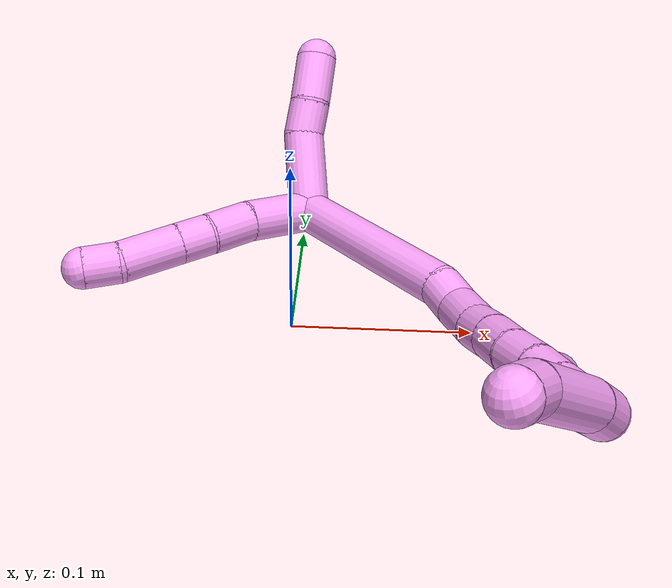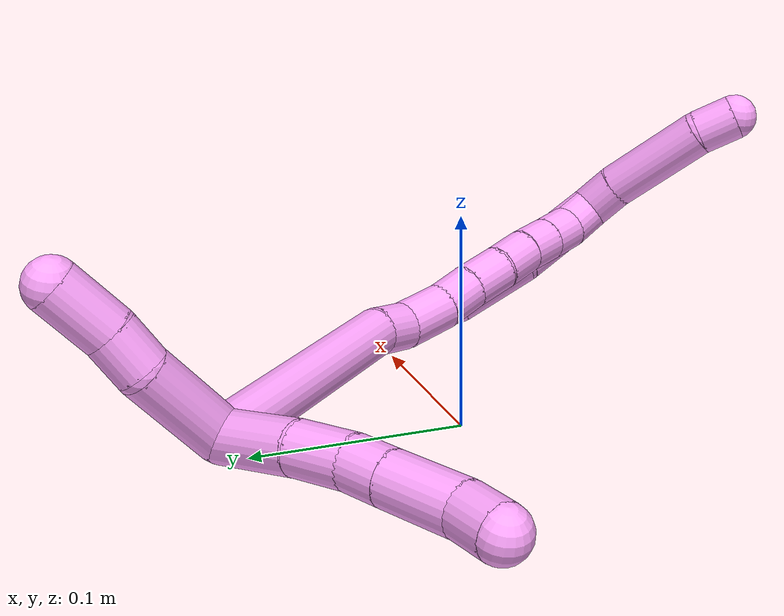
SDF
<sdf version="1.7">
 <world name="default">
  <model name="photoneo_s_sensor">
   <static>1</static>
   <pose>0 0 2 1.57079 1.57079 3.14159</pose>
   <link name="link">
    <inertial><mass>0.1</mass></inertial>
    <sensor name="sensor" type="depth">
     <update_rate>30</update_rate>
     <camera>
      <horizontal_fov>1.22</horizontal_fov>
      <image><width>1920</width><height>1200</height><format>B8G8R8</format></image>
      <clip><near>0.1</near><far>4</far></clip>
      <depth_camera><output>points</output></depth_camera>
     </camera>
     <plugin name="camera_plugin" filename="libgazebo_ros_depth_camera.so">
      <baseline>0.2</baseline>
      <alwaysOn>1</alwaysOn>
      <updateRate>0.0</updateRate>
      <cameraName>camera_ir</cameraName>
      <imageTopicName>/camera/color/image_raw</imageTopicName>
      <cameraInfoTopicName>/camera/color/camera_info</cameraInfoTopicName>
      <depthImageTopicName>/camera/depth/image_raw</depthImageTopicName>
      <depthImageCameraInfoTopicName>/camera/depth/camera_info</depthImageCameraInfoTopicName>
      <pointCloudTopicName>/camera/depth/points</pointCloudTopicName>
      <frameName>fr_optical</frameName>
      <pointCloudCutoff>0.1</pointCloudCutoff>
      <pointCloudCutoffMax>2.0</pointCloudCutoffMax>
      <distortionK1>0</distortionK1>
      <distortionK2>0</distortionK2>
      <distortionK3>0</distortionK3>
      <distortionT1>0</distortionT1>
      <distortionT2>0</distortionT2>
      <CxPrime>0</CxPrime>
      <Cx>0</Cx>
      <Cy>0</Cy>
      <focalLength>0</focalLength>
      <hackBaseline>0</hackBaseline>
     </plugin>
    </sensor>
   </link>
  </model>
  <model name="bin">
   <static>1</static>
   <link name="bottom">
    <collision name="collision-bottom">
     <pose>0 0 -0.01 0 -0 0</pose>
     <geometry><box><size>0.8 0.6 0.02</size></box></geometry>
     <surface>
      <friction><ode><mu>100</mu><mu2>100</mu2></ode></friction>
      <contact><collide_bitmask>65535</collide_bitmask></contact>
     </surface>
    </collision>
   </link>
   <link name="west_wall">
    <collision name="collision-west_wall">
     <pose>-0.41 0 0.1 0 -0 0</pose>
     <geometry><box><size>0.02 0.6 0.2</size></box></geometry>
     <surface>
      <friction><ode><mu>100</mu><mu2>100</mu2></ode></friction>
      <contact><collide_bitmask>65535</collide_bitmask></contact>
     </surface>
    </collision>
   </link>
   <link name="east_wall">
    <collision name="collision-east_wall">
     <pose>0.41 0 0.1 0 -0 0</pose>
     <geometry><box><size>0.02 0.6 0.2</size></box></geometry>
     <surface>
      <friction><ode><mu>100</mu><mu2>100</mu2></ode></friction>
      <contact><collide_bitmask>65535</collide_bitmask></contact>
     </surface>
    </collision>
   </link>
   <link name="south_wall">
    <collision name="collision-south_wall">
     <pose>0 -0.31 0.1 0 -0 0</pose>
     <geometry><box><size>0.8 0.02 0.2</size></box></geometry>
     <surface>
      <friction><ode><mu>100</mu><mu2>100</mu2></ode></friction>
      <contact><collide_bitmask>65535</collide_bitmask></contact>
     </surface>
    </collision>
   </link>
   <link name="north_wall">
    <collision name="collision-north_wall">
     <pose>0 0.31 0.1 0 -0 0</pose>
     <geometry><box><size>0.8 0.02 0.2</size></box></geometry>
     <surface>
      <friction><ode><mu>100</mu><mu2>100</mu2></ode></friction>
      <contact><collide_bitmask>65535</collide_bitmask></contact>
     </surface>
    </collision>
   </link>
  </model>
  <model name="4">
   <static>0</static>
   <link name="4">
    <collision name="collision-cylinder-e_1_2_8">
     <pose>0.016734 0.011284 -0.00841 -2.21129 0.871519 -1.49586</pose>
     <geometry><cylinder><radius>0.0125</radius><length>0.043731</length></cylinder></geometry>
     <surface>
      <friction><ode><mu>1.16</mu><mu2>1.16</mu2><slip1>0</slip1><slip2>0</slip2></ode></friction>
      <contact><ode><kp>1e+06</kp><kd>1</kd><max_vel>0</max_vel><min_depth>0.001</min_depth></ode></contact>
     </surface>
    </collision>
    <visual name="visual-cylinder-e_1_2_8">
     <pose>0.016734 0.011284 -0.00841 -2.21129 0.871519 -1.49586</pose>
     <geometry><cylinder><radius>0.0125</radius><length>0.043731</length></cylinder></geometry>
     <material><ambient>1 0.65098 0.996078 1</ambient></material>
    </visual>
    <collision name="collision-cylinder-e_2_8_9">
     <pose>0.044851 0.029439 -0.020491 -2.06142 0.970715 -1.443</pose>
     <geometry><cylinder><radius>0.0125</radius><length>0.027586</length></cylinder></geometry>
     <surface>
      <friction><ode><mu>1.16</mu><mu2>1.16</mu2><slip1>0</slip1><slip2>0</slip2></ode></friction>
      <contact><ode><kp>1e+06</kp><kd>1</kd><max_vel>0</max_vel><min_depth>0.001</min_depth></ode></contact>
     </surface>
    </collision>
    <visual name="visual-cylinder-e_2_8_9">
     <pose>0.044851 0.029439 -0.020491 -2.06142 0.970715 -1.443</pose>
     <geometry><cylinder><radius>0.0125</radius><length>0.027586</length></cylinder></geometry>
     <material><ambient>1 0.65098 0.996078 1</ambient></material>
    </visual>
    <collision name="collision-cylinder-e_3_9_10">
     <pose>0.063803 0.042496 -0.026328 -1.90768 0.857079 -1.14439</pose>
     <geometry><cylinder><radius>0.0125</radius><length>0.020024</length></cylinder></geometry>
     <surface>
      <friction><ode><mu>1.16</mu><mu2>1.16</mu2><slip1>0</slip1><slip2>0</slip2></ode></friction>
      <contact><ode><kp>1e+06</kp><kd>1</kd><max_vel>0</max_vel><min_depth>0.001</min_depth></ode></contact>
     </surface>
    </collision>
    <visual name="visual-cylinder-e_3_9_10">
     <pose>0.063803 0.042496 -0.026328 -1.90768 0.857079 -1.14439</pose>
     <geometry><cylinder><radius>0.0125</radius><length>0.020024</length></cylinder></geometry>
     <material><ambient>1 0.65098 0.996078 1</ambient></material>
    </visual>
    <collision name="collision-cylinder-e_4_10_11">
     <pose>0.085513 0.059937 -0.032542 -1.91604 0.868739 -1.16655</pose>
     <geometry><cylinder><radius>0.0125</radius><length>0.037045</length></cylinder></geometry>
     <surface>
      <friction><ode><mu>1.16</mu><mu2>1.16</mu2><slip1>0</slip1><slip2>0</slip2></ode></friction>
      <contact><ode><kp>1e+06</kp><kd>1</kd><max_vel>0</max_vel><min_depth>0.001</min_depth></ode></contact>
     </surface>
    </collision>
    <visual name="visual-cylinder-e_4_10_11">
     <pose>0.085513 0.059937 -0.032542 -1.91604 0.868739 -1.16655</pose>
     <geometry><cylinder><radius>0.0125</radius><length>0.037045</length></cylinder></geometry>
     <material><ambient>1 0.65098 0.996078 1</ambient></material>
    </visual>
    <collision name="collision-cylinder-e_5_11_6">
     <pose>0.105911 0.079558 -0.039362 -1.89077 0.617332 -0.831629</pose>
     <geometry><cylinder><radius>0.0125</radius><length>0.021614</length></cylinder></geometry>
     <surface>
      <friction><ode><mu>1.16</mu><mu2>1.16</mu2><slip1>0</slip1><slip2>0</slip2></ode></friction>
      <contact><ode><kp>1e+06</kp><kd>1</kd><max_vel>0</max_vel><min_depth>0.001</min_depth></ode></contact>
     </surface>
    </collision>
    <visual name="visual-cylinder-e_5_11_6">
     <pose>0.105911 0.079558 -0.039362 -1.89077 0.617332 -0.831629</pose>
     <geometry><cylinder><radius>0.0125</radius><length>0.021614</length></cylinder></geometry>
     <material><ambient>1 0.65098 0.996078 1</ambient></material>
    </visual>
    <collision name="collision-cylinder-e_1_2_12">
     <pose>-0.016923 0.003362 -0.01752 -2.95201 -0.759032 2.67358</pose>
     <geometry><cylinder><radius>0.0125</radius><length>0.049179</length></cylinder></geometry>
     <surface>
      <friction><ode><mu>1.16</mu><mu2>1.16</mu2><slip1>0</slip1><slip2>0</slip2></ode></friction>
      <contact><ode><kp>1e+06</kp><kd>1</kd><max_vel>0</max_vel><min_depth>0.001</min_depth></ode></contact>
     </surface>
    </collision>
    <visual name="visual-cylinder-e_1_2_12">
     <pose>-0.016923 0.003362 -0.01752 -2.95201 -0.759032 2.67358</pose>
     <geometry><cylinder><radius>0.0125</radius><length>0.049179</length></cylinder></geometry>
     <material><ambient>1 0.65098 0.996078 1</ambient></material>
    </visual>
    <collision name="collision-cylinder-e_2_12_13">
     <pose>-0.041206 0.005208 -0.04233 2.9366 -0.779663 -2.65097</pose>
     <geometry><cylinder><radius>0.0125</radius><length>0.020938</length></cylinder></geometry>
     <surface>
      <friction><ode><mu>1.16</mu><mu2>1.16</mu2><slip1>0</slip1><slip2>0</slip2></ode></friction>
      <contact><ode><kp>1e+06</kp><kd>1</kd><max_vel>0</max_vel><min_depth>0.001</min_depth></ode></contact>
     </surface>
    </collision>
    <visual name="visual-cylinder-e_2_12_13">
     <pose>-0.041206 0.005208 -0.04233 2.9366 -0.779663 -2.65097</pose>
     <geometry><cylinder><radius>0.0125</radius><length>0.020938</length></cylinder></geometry>
     <material><ambient>1 0.65098 0.996078 1</ambient></material>
    </visual>
    <collision name="collision-cylinder-e_3_13_5">
     <pose>-0.060245 0.003216 -0.058926 3.09038 -0.897301 -3.03529</pose>
     <geometry><cylinder><radius>0.0125</radius><length>0.029883</length></cylinder></geometry>
     <surface>
      <friction><ode><mu>1.16</mu><mu2>1.16</mu2><slip1>0</slip1><slip2>0</slip2></ode></friction>
      <contact><ode><kp>1e+06</kp><kd>1</kd><max_vel>0</max_vel><min_depth>0.001</min_depth></ode></contact>
     </surface>
    </collision>
    <visual name="visual-cylinder-e_3_13_5">
     <pose>-0.060245 0.003216 -0.058926 3.09038 -0.897301 -3.03529</pose>
     <geometry><cylinder><radius>0.0125</radius><length>0.029883</length></cylinder></geometry>
     <material><ambient>1 0.65098 0.996078 1</ambient></material>
    </visual>
    <collision name="collision-cylinder-e_1_2_14">
     <pose>0.031924 -0.053979 0.00402 1.49645 0.532869 0.496262</pose>
     <geometry><cylinder><radius>0.0125</radius><length>0.125683</length></cylinder></geometry>
     <surface>
      <friction><ode><mu>1.16</mu><mu2>1.16</mu2><slip1>0</slip1><slip2>0</slip2></ode></friction>
      <contact><ode><kp>1e+06</kp><kd>1</kd><max_vel>0</max_vel><min_depth>0.001</min_depth></ode></contact>
     </surface>
    </collision>
    <visual name="visual-cylinder-e_1_2_14">
     <pose>0.031924 -0.053979 0.00402 1.49645 0.532869 0.496262</pose>
     <geometry><cylinder><radius>0.0125</radius><length>0.125683</length></cylinder></geometry>
     <material><ambient>1 0.65098 0.996078 1</ambient></material>
    </visual>
    <collision name="collision-cylinder-e_2_14_15">
     <pose>0.070886 -0.115147 0.009967 1.30894 0.757512 0.592724</pose>
     <geometry><cylinder><radius>0.0125</radius><length>0.020487</length></cylinder></geometry>
     <surface>
      <friction><ode><mu>1.16</mu><mu2>1.16</mu2><slip1>0</slip1><slip2>0</slip2></ode></friction>
      <contact><ode><kp>1e+06</kp><kd>1</kd><max_vel>0</max_vel><min_depth>0.001</min_depth></ode></contact>
     </surface>
    </collision>
    <visual name="visual-cylinder-e_2_14_15">
     <pose>0.070886 -0.115147 0.009967 1.30894 0.757512 0.592724</pose>
     <geometry><cylinder><radius>0.0125</radius><length>0.020487</length></cylinder></geometry>
     <material><ambient>1 0.65098 0.996078 1</ambient></material>
    </visual>
    <collision name="collision-cylinder-e_3_15_16">
     <pose>0.087928 -0.131291 0.009905 1.78936 0.828641 1.00288</pose>
     <geometry><cylinder><radius>0.0125</radius><length>0.027146</length></cylinder></geometry>
     <surface>
      <friction><ode><mu>1.16</mu><mu2>1.16</mu2><slip1>0</slip1><slip2>0</slip2></ode></friction>
      <contact><ode><kp>1e+06</kp><kd>1</kd><max_vel>0</max_vel><min_depth>0.001</min_depth></ode></contact>
     </surface>
    </collision>
    <visual name="visual-cylinder-e_3_15_16">
     <pose>0.087928 -0.131291 0.009905 1.78936 0.828641 1.00288</pose>
     <geometry><cylinder><radius>0.0125</radius><length>0.027146</length></cylinder></geometry>
     <material><ambient>1 0.65098 0.996078 1</ambient></material>
    </visual>
    <collision name="collision-cylinder-e_4_16_17">
     <pose>0.104892 -0.147552 0.005297 1.91505 0.731104 0.996208</pose>
     <geometry><cylinder><radius>0.0125</radius><length>0.020849</length></cylinder></geometry>
     <surface>
      <friction><ode><mu>1.16</mu><mu2>1.16</mu2><slip1>0</slip1><slip2>0</slip2></ode></friction>
      <contact><ode><kp>1e+06</kp><kd>1</kd><max_vel>0</max_vel><min_depth>0.001</min_depth></ode></contact>
     </surface>
    </collision>
    <visual name="visual-cylinder-e_4_16_17">
     <pose>0.104892 -0.147552 0.005297 1.91505 0.731104 0.996208</pose>
     <geometry><cylinder><radius>0.0125</radius><length>0.020849</length></cylinder></geometry>
     <material><ambient>1 0.65098 0.996078 1</ambient></material>
    </visual>
    <collision name="collision-cylinder-e_5_17_18">
     <pose>0.120131 -0.162906 0.000144 1.87576 0.775799 1.01639</pose>
     <geometry><cylinder><radius>0.0125</radius><length>0.023643</length></cylinder></geometry>
     <surface>
      <friction><ode><mu>1.16</mu><mu2>1.16</mu2><slip1>0</slip1><slip2>0</slip2></ode></friction>
      <contact><ode><kp>1e+06</kp><kd>1</kd><max_vel>0</max_vel><min_depth>0.001</min_depth></ode></contact>
     </surface>
    </collision>
    <visual name="visual-cylinder-e_5_17_18">
     <pose>0.120131 -0.162906 0.000144 1.87576 0.775799 1.01639</pose>
     <geometry><cylinder><radius>0.0125</radius><length>0.023643</length></cylinder></geometry>
     <material><ambient>1 0.65098 0.996078 1</ambient></material>
    </visual>
    <collision name="collision-cylinder-e_6_18_19">
     <pose>0.13548 -0.179265 -0.003949 1.75621 0.696515 0.824793</pose>
     <geometry><cylinder><radius>0.0125</radius><length>0.022043</length></cylinder></geometry>
     <surface>
      <friction><ode><mu>1.16</mu><mu2>1.16</mu2><slip1>0</slip1><slip2>0</slip2></ode></friction>
      <contact><ode><kp>1e+06</kp><kd>1</kd><max_vel>0</max_vel><min_depth>0.001</min_depth></ode></contact>
     </surface>
    </collision>
    <visual name="visual-cylinder-e_6_18_19">
     <pose>0.13548 -0.179265 -0.003949 1.75621 0.696515 0.824793</pose>
     <geometry><cylinder><radius>0.0125</radius><length>0.022043</length></cylinder></geometry>
     <material><ambient>1 0.65098 0.996078 1</ambient></material>
    </visual>
    <collision name="collision-cylinder-e_7_19_20">
     <pose>0.14927 -0.194969 -0.006257 1.6719 0.735103 0.805584</pose>
     <geometry><cylinder><radius>0.0125</radius><length>0.020039</length></cylinder></geometry>
     <surface>
      <friction><ode><mu>1.16</mu><mu2>1.16</mu2><slip1>0</slip1><slip2>0</slip2></ode></friction>
      <contact><ode><kp>1e+06</kp><kd>1</kd><max_vel>0</max_vel><min_depth>0.001</min_depth></ode></contact>
     </surface>
    </collision>
    <visual name="visual-cylinder-e_7_19_20">
     <pose>0.14927 -0.194969 -0.006257 1.6719 0.735103 0.805584</pose>
     <geometry><cylinder><radius>0.0125</radius><length>0.020039</length></cylinder></geometry>
     <material><ambient>1 0.65098 0.996078 1</ambient></material>
    </visual>
    <collision name="collision-cylinder-e_8_20_21">
     <pose>0.162716 -0.209767 -0.008011 1.70553 0.732902 0.827872</pose>
     <geometry><cylinder><radius>0.0125</radius><length>0.020108</length></cylinder></geometry>
     <surface>
      <friction><ode><mu>1.16</mu><mu2>1.16</mu2><slip1>0</slip1><slip2>0</slip2></ode></friction>
      <contact><ode><kp>1e+06</kp><kd>1</kd><max_vel>0</max_vel><min_depth>0.001</min_depth></ode></contact>
     </surface>
    </collision>
    <visual name="visual-cylinder-e_8_20_21">
     <pose>0.162716 -0.209767 -0.008011 1.70553 0.732902 0.827872</pose>
     <geometry><cylinder><radius>0.0125</radius><length>0.020108</length></cylinder></geometry>
     <material><ambient>1 0.65098 0.996078 1</ambient></material>
    </visual>
    <collision name="collision-cylinder-e_9_21_1">
     <pose>0.175848 -0.223877 -0.012762 2.08041 0.695044 1.1062</pose>
     <geometry><cylinder><radius>0.0125</radius><length>0.020003</length></cylinder></geometry>
     <surface>
      <friction><ode><mu>1.16</mu><mu2>1.16</mu2><slip1>0</slip1><slip2>0</slip2></ode></friction>
      <contact><ode><kp>1e+06</kp><kd>1</kd><max_vel>0</max_vel><min_depth>0.001</min_depth></ode></contact>
     </surface>
    </collision>
    <visual name="visual-cylinder-e_9_21_1">
     <pose>0.175848 -0.223877 -0.012762 2.08041 0.695044 1.1062</pose>
     <geometry><cylinder><radius>0.0125</radius><length>0.020003</length></cylinder></geometry>
     <material><ambient>1 0.65098 0.996078 1</ambient></material>
    </visual>
    <collision name="collision-cylinder-e_1_1_22">
     <pose>0.163357 -0.214061 -0.005062 -0.964862 -0.754523 0.409219</pose>
     <geometry><cylinder><radius>0.0125</radius><length>0.055175</length></cylinder></geometry>
     <surface>
      <friction><ode><mu>1.16</mu><mu2>1.16</mu2><slip1>0</slip1><slip2>0</slip2></ode></friction>
      <contact><ode><kp>1e+06</kp><kd>1</kd><max_vel>0</max_vel><min_depth>0.001</min_depth></ode></contact>
     </surface>
    </collision>
    <visual name="visual-cylinder-e_1_1_22">
     <pose>0.163357 -0.214061 -0.005062 -0.964862 -0.754523 0.409219</pose>
     <geometry><cylinder><radius>0.0125</radius><length>0.055175</length></cylinder></geometry>
     <material><ambient>1 0.65098 0.996078 1</ambient></material>
    </visual>
    <collision name="collision-cylinder-e_2_22_4">
     <pose>0.127084 -0.189363 0.017941 -0.615764 -0.887241 0.299959</pose>
     <geometry><cylinder><radius>0.0125</radius><length>0.044825</length></cylinder></geometry>
     <surface>
      <friction><ode><mu>1.16</mu><mu2>1.16</mu2><slip1>0</slip1><slip2>0</slip2></ode></friction>
      <contact><ode><kp>1e+06</kp><kd>1</kd><max_vel>0</max_vel><min_depth>0.001</min_depth></ode></contact>
     </surface>
    </collision>
    <visual name="visual-cylinder-e_2_22_4">
     <pose>0.127084 -0.189363 0.017941 -0.615764 -0.887241 0.299959</pose>
     <geometry><cylinder><radius>0.0125</radius><length>0.044825</length></cylinder></geometry>
     <material><ambient>1 0.65098 0.996078 1</ambient></material>
    </visual>
    <collision name="collision-cylinder-e_1_1_23">
     <pose>0.188415 -0.230311 -0.025093 -3.11 0.622444 -3.04345</pose>
     <geometry><cylinder><radius>0.0125</radius><length>0.02114</length></cylinder></geometry>
     <surface>
      <friction><ode><mu>1.16</mu><mu2>1.16</mu2><slip1>0</slip1><slip2>0</slip2></ode></friction>
      <contact><ode><kp>1e+06</kp><kd>1</kd><max_vel>0</max_vel><min_depth>0.001</min_depth></ode></contact>
     </surface>
    </collision>
    <visual name="visual-cylinder-e_1_1_23">
     <pose>0.188415 -0.230311 -0.025093 -3.11 0.622444 -3.04345</pose>
     <geometry><cylinder><radius>0.0125</radius><length>0.02114</length></cylinder></geometry>
     <material><ambient>1 0.65098 0.996078 1</ambient></material>
    </visual>
    <collision name="collision-cylinder-e_2_23_24">
     <pose>0.213319 -0.227317 -0.055134 -3.01535 0.713953 -2.80584</pose>
     <geometry><cylinder><radius>0.0125</radius><length>0.057239</length></cylinder></geometry>
     <surface>
      <friction><ode><mu>1.16</mu><mu2>1.16</mu2><slip1>0</slip1><slip2>0</slip2></ode></friction>
      <contact><ode><kp>1e+06</kp><kd>1</kd><max_vel>0</max_vel><min_depth>0.001</min_depth></ode></contact>
     </surface>
    </collision>
    <visual name="visual-cylinder-e_2_23_24">
     <pose>0.213319 -0.227317 -0.055134 -3.01535 0.713953 -2.80584</pose>
     <geometry><cylinder><radius>0.0125</radius><length>0.057239</length></cylinder></geometry>
     <material><ambient>1 0.65098 0.996078 1</ambient></material>
    </visual>
    <collision name="collision-cylinder-e_3_24_3">
     <pose>0.240862 -0.224743 -0.082866 3.11769 0.95136 3.0952</pose>
     <geometry><cylinder><radius>0.0125</radius><length>0.021621</length></cylinder></geometry>
     <surface>
      <friction><ode><mu>1.16</mu><mu2>1.16</mu2><slip1>0</slip1><slip2>0</slip2></ode></friction>
      <contact><ode><kp>1e+06</kp><kd>1</kd><max_vel>0</max_vel><min_depth>0.001</min_depth></ode></contact>
     </surface>
    </collision>
    <visual name="visual-cylinder-e_3_24_3">
     <pose>0.240862 -0.224743 -0.082866 3.11769 0.95136 3.0952</pose>
     <geometry><cylinder><radius>0.0125</radius><length>0.021621</length></cylinder></geometry>
     <material><ambient>1 0.65098 0.996078 1</ambient></material>
    </visual>
    <collision name="collision-sphere-3">
     <pose>0.249664 -0.224893 -0.089141 0 -0 0</pose>
     <geometry><sphere><radius>0.0125</radius></sphere></geometry>
     <surface>
      <friction><ode><mu>1.16</mu><mu2>1.16</mu2><slip1>0</slip1><slip2>0</slip2></ode></friction>
      <contact><ode><kp>1e+06</kp><kd>1</kd><max_vel>0</max_vel><min_depth>0.001</min_depth></ode></contact>
     </surface>
    </collision>
    <visual name="visual-sphere-3">
     <pose>0.249664 -0.224893 -0.089141 0 -0 0</pose>
     <geometry><sphere><radius>0.0125</radius></sphere></geometry>
     <material><ambient>1 0.65098 0.996078 1</ambient></material>
    </visual>
    <collision name="collision-sphere-24">
     <pose>0.232059 -0.224593 -0.076592 0 -0 0</pose>
     <geometry><sphere><radius>0.0125</radius></sphere></geometry>
     <surface>
      <friction><ode><mu>1.16</mu><mu2>1.16</mu2><slip1>0</slip1><slip2>0</slip2></ode></friction>
      <contact><ode><kp>1e+06</kp><kd>1</kd><max_vel>0</max_vel><min_depth>0.001</min_depth></ode></contact>
     </surface>
    </collision>
    <visual name="visual-sphere-24">
     <pose>0.232059 -0.224593 -0.076592 0 -0 0</pose>
     <geometry><sphere><radius>0.0125</radius></sphere></geometry>
     <material><ambient>1 0.65098 0.996078 1</ambient></material>
    </visual>
    <collision name="collision-sphere-23">
     <pose>0.194578 -0.23004 -0.033676 0 -0 0</pose>
     <geometry><sphere><radius>0.0125</radius></sphere></geometry>
     <surface>
      <friction><ode><mu>1.16</mu><mu2>1.16</mu2><slip1>0</slip1><slip2>0</slip2></ode></friction>
      <contact><ode><kp>1e+06</kp><kd>1</kd><max_vel>0</max_vel><min_depth>0.001</min_depth></ode></contact>
     </surface>
    </collision>
    <visual name="visual-sphere-23">
     <pose>0.194578 -0.23004 -0.033676 0 -0 0</pose>
     <geometry><sphere><radius>0.0125</radius></sphere></geometry>
     <material><ambient>1 0.65098 0.996078 1</ambient></material>
    </visual>
    <collision name="collision-sphere-4">
     <pose>0.109707 -0.181188 0.029496 0 -0 0</pose>
     <geometry><sphere><radius>0.0125</radius></sphere></geometry>
     <surface>
      <friction><ode><mu>1.16</mu><mu2>1.16</mu2><slip1>0</slip1><slip2>0</slip2></ode></friction>
      <contact><ode><kp>1e+06</kp><kd>1</kd><max_vel>0</max_vel><min_depth>0.001</min_depth></ode></contact>
     </surface>
    </collision>
    <visual name="visual-sphere-4">
     <pose>0.109707 -0.181188 0.029496 0 -0 0</pose>
     <geometry><sphere><radius>0.0125</radius></sphere></geometry>
     <material><ambient>1 0.65098 0.996078 1</ambient></material>
    </visual>
    <collision name="collision-sphere-22">
     <pose>0.144461 -0.197539 0.006386 0 -0 0</pose>
     <geometry><sphere><radius>0.0125</radius></sphere></geometry>
     <surface>
      <friction><ode><mu>1.16</mu><mu2>1.16</mu2><slip1>0</slip1><slip2>0</slip2></ode></friction>
      <contact><ode><kp>1e+06</kp><kd>1</kd><max_vel>0</max_vel><min_depth>0.001</min_depth></ode></contact>
     </surface>
    </collision>
    <visual name="visual-sphere-22">
     <pose>0.144461 -0.197539 0.006386 0 -0 0</pose>
     <geometry><sphere><radius>0.0125</radius></sphere></geometry>
     <material><ambient>1 0.65098 0.996078 1</ambient></material>
    </visual>
    <collision name="collision-sphere-1">
     <pose>0.182253 -0.230583 -0.01651 0 -0 0</pose>
     <geometry><sphere><radius>0.0125</radius></sphere></geometry>
     <surface>
      <friction><ode><mu>1.16</mu><mu2>1.16</mu2><slip1>0</slip1><slip2>0</slip2></ode></friction>
      <contact><ode><kp>1e+06</kp><kd>1</kd><max_vel>0</max_vel><min_depth>0.001</min_depth></ode></contact>
     </surface>
    </collision>
    <visual name="visual-sphere-1">
     <pose>0.182253 -0.230583 -0.01651 0 -0 0</pose>
     <geometry><sphere><radius>0.0125</radius></sphere></geometry>
     <material><ambient>1 0.65098 0.996078 1</ambient></material>
    </visual>
    <collision name="collision-sphere-21">
     <pose>0.169443 -0.217172 -0.009015 0 -0 0</pose>
     <geometry><sphere><radius>0.0125</radius></sphere></geometry>
     <surface>
      <friction><ode><mu>1.16</mu><mu2>1.16</mu2><slip1>0</slip1><slip2>0</slip2></ode></friction>
      <contact><ode><kp>1e+06</kp><kd>1</kd><max_vel>0</max_vel><min_depth>0.001</min_depth></ode></contact>
     </surface>
    </collision>
    <visual name="visual-sphere-21">
     <pose>0.169443 -0.217172 -0.009015 0 -0 0</pose>
     <geometry><sphere><radius>0.0125</radius></sphere></geometry>
     <material><ambient>1 0.65098 0.996078 1</ambient></material>
    </visual>
    <collision name="collision-sphere-6">
     <pose>0.112167 0.087923 -0.042134 0 -0 0</pose>
     <geometry><sphere><radius>0.0125</radius></sphere></geometry>
     <surface>
      <friction><ode><mu>1.16</mu><mu2>1.16</mu2><slip1>0</slip1><slip2>0</slip2></ode></friction>
      <contact><ode><kp>1e+06</kp><kd>1</kd><max_vel>0</max_vel><min_depth>0.001</min_depth></ode></contact>
     </surface>
    </collision>
    <visual name="visual-sphere-6">
     <pose>0.112167 0.087923 -0.042134 0 -0 0</pose>
     <geometry><sphere><radius>0.0125</radius></sphere></geometry>
     <material><ambient>1 0.65098 0.996078 1</ambient></material>
    </visual>
    <collision name="collision-sphere-11">
     <pose>0.099655 0.071193 -0.03659 0 -0 0</pose>
     <geometry><sphere><radius>0.0125</radius></sphere></geometry>
     <surface>
      <friction><ode><mu>1.16</mu><mu2>1.16</mu2><slip1>0</slip1><slip2>0</slip2></ode></friction>
      <contact><ode><kp>1e+06</kp><kd>1</kd><max_vel>0</max_vel><min_depth>0.001</min_depth></ode></contact>
     </surface>
    </collision>
    <visual name="visual-sphere-11">
     <pose>0.099655 0.071193 -0.03659 0 -0 0</pose>
     <geometry><sphere><radius>0.0125</radius></sphere></geometry>
     <material><ambient>1 0.65098 0.996078 1</ambient></material>
    </visual>
    <collision name="collision-sphere-10">
     <pose>0.071371 0.048682 -0.028494 0 -0 0</pose>
     <geometry><sphere><radius>0.0125</radius></sphere></geometry>
     <surface>
      <friction><ode><mu>1.16</mu><mu2>1.16</mu2><slip1>0</slip1><slip2>0</slip2></ode></friction>
      <contact><ode><kp>1e+06</kp><kd>1</kd><max_vel>0</max_vel><min_depth>0.001</min_depth></ode></contact>
     </surface>
    </collision>
    <visual name="visual-sphere-10">
     <pose>0.071371 0.048682 -0.028494 0 -0 0</pose>
     <geometry><sphere><radius>0.0125</radius></sphere></geometry>
     <material><ambient>1 0.65098 0.996078 1</ambient></material>
    </visual>
    <collision name="collision-sphere-9">
     <pose>0.056234 0.03631 -0.024161 0 -0 0</pose>
     <geometry><sphere><radius>0.0125</radius></sphere></geometry>
     <surface>
      <friction><ode><mu>1.16</mu><mu2>1.16</mu2><slip1>0</slip1><slip2>0</slip2></ode></friction>
      <contact><ode><kp>1e+06</kp><kd>1</kd><max_vel>0</max_vel><min_depth>0.001</min_depth></ode></contact>
     </surface>
    </collision>
    <visual name="visual-sphere-9">
     <pose>0.056234 0.03631 -0.024161 0 -0 0</pose>
     <geometry><sphere><radius>0.0125</radius></sphere></geometry>
     <material><ambient>1 0.65098 0.996078 1</ambient></material>
    </visual>
    <collision name="collision-sphere-2">
     <geometry><sphere><radius>0.0125</radius></sphere></geometry>
     <surface>
      <friction><ode><mu>1.16</mu><mu2>1.16</mu2><slip1>0</slip1><slip2>0</slip2></ode></friction>
      <contact><ode><kp>1e+06</kp><kd>1</kd><max_vel>0</max_vel><min_depth>0.001</min_depth></ode></contact>
     </surface>
    </collision>
    <visual name="visual-sphere-2">
     <geometry><sphere><radius>0.0125</radius></sphere></geometry>
     <material><ambient>1 0.65098 0.996078 1</ambient></material>
    </visual>
    <collision name="collision-sphere-19">
     <pose>0.142551 -0.187575 -0.005507 0 -0 0</pose>
     <geometry><sphere><radius>0.0125</radius></sphere></geometry>
     <surface>
      <friction><ode><mu>1.16</mu><mu2>1.16</mu2><slip1>0</slip1><slip2>0</slip2></ode></friction>
      <contact><ode><kp>1e+06</kp><kd>1</kd><max_vel>0</max_vel><min_depth>0.001</min_depth></ode></contact>
     </surface>
    </collision>
    <visual name="visual-sphere-19">
     <pose>0.142551 -0.187575 -0.005507 0 -0 0</pose>
     <geometry><sphere><radius>0.0125</radius></sphere></geometry>
     <material><ambient>1 0.65098 0.996078 1</ambient></material>
    </visual>
    <collision name="collision-sphere-8">
     <pose>0.033467 0.022569 -0.016821 0 -0 0</pose>
     <geometry><sphere><radius>0.0125</radius></sphere></geometry>
     <surface>
      <friction><ode><mu>1.16</mu><mu2>1.16</mu2><slip1>0</slip1><slip2>0</slip2></ode></friction>
      <contact><ode><kp>1e+06</kp><kd>1</kd><max_vel>0</max_vel><min_depth>0.001</min_depth></ode></contact>
     </surface>
    </collision>
    <visual name="visual-sphere-8">
     <pose>0.033467 0.022569 -0.016821 0 -0 0</pose>
     <geometry><sphere><radius>0.0125</radius></sphere></geometry>
     <material><ambient>1 0.65098 0.996078 1</ambient></material>
    </visual>
    <collision name="collision-sphere-12">
     <pose>-0.033846 0.006724 -0.035041 0 -0 0</pose>
     <geometry><sphere><radius>0.0125</radius></sphere></geometry>
     <surface>
      <friction><ode><mu>1.16</mu><mu2>1.16</mu2><slip1>0</slip1><slip2>0</slip2></ode></friction>
      <contact><ode><kp>1e+06</kp><kd>1</kd><max_vel>0</max_vel><min_depth>0.001</min_depth></ode></contact>
     </surface>
    </collision>
    <visual name="visual-sphere-12">
     <pose>-0.033846 0.006724 -0.035041 0 -0 0</pose>
     <geometry><sphere><radius>0.0125</radius></sphere></geometry>
     <material><ambient>1 0.65098 0.996078 1</ambient></material>
    </visual>
    <collision name="collision-sphere-13">
     <pose>-0.048567 0.003693 -0.049619 0 -0 0</pose>
     <geometry><sphere><radius>0.0125</radius></sphere></geometry>
     <surface>
      <friction><ode><mu>1.16</mu><mu2>1.16</mu2><slip1>0</slip1><slip2>0</slip2></ode></friction>
      <contact><ode><kp>1e+06</kp><kd>1</kd><max_vel>0</max_vel><min_depth>0.001</min_depth></ode></contact>
     </surface>
    </collision>
    <visual name="visual-sphere-13">
     <pose>-0.048567 0.003693 -0.049619 0 -0 0</pose>
     <geometry><sphere><radius>0.0125</radius></sphere></geometry>
     <material><ambient>1 0.65098 0.996078 1</ambient></material>
    </visual>
    <collision name="collision-sphere-5">
     <pose>-0.071924 0.002739 -0.068233 0 -0 0</pose>
     <geometry><sphere><radius>0.0125</radius></sphere></geometry>
     <surface>
      <friction><ode><mu>1.16</mu><mu2>1.16</mu2><slip1>0</slip1><slip2>0</slip2></ode></friction>
      <contact><ode><kp>1e+06</kp><kd>1</kd><max_vel>0</max_vel><min_depth>0.001</min_depth></ode></contact>
     </surface>
    </collision>
    <visual name="visual-sphere-5">
     <pose>-0.071924 0.002739 -0.068233 0 -0 0</pose>
     <geometry><sphere><radius>0.0125</radius></sphere></geometry>
     <material><ambient>1 0.65098 0.996078 1</ambient></material>
    </visual>
    <collision name="collision-sphere-14">
     <pose>0.063848 -0.107958 0.008041 0 -0 0</pose>
     <geometry><sphere><radius>0.0125</radius></sphere></geometry>
     <surface>
      <friction><ode><mu>1.16</mu><mu2>1.16</mu2><slip1>0</slip1><slip2>0</slip2></ode></friction>
      <contact><ode><kp>1e+06</kp><kd>1</kd><max_vel>0</max_vel><min_depth>0.001</min_depth></ode></contact>
     </surface>
    </collision>
    <visual name="visual-sphere-14">
     <pose>0.063848 -0.107958 0.008041 0 -0 0</pose>
     <geometry><sphere><radius>0.0125</radius></sphere></geometry>
     <material><ambient>1 0.65098 0.996078 1</ambient></material>
    </visual>
    <collision name="collision-sphere-15">
     <pose>0.077925 -0.122336 0.011894 0 -0 0</pose>
     <geometry><sphere><radius>0.0125</radius></sphere></geometry>
     <surface>
      <friction><ode><mu>1.16</mu><mu2>1.16</mu2><slip1>0</slip1><slip2>0</slip2></ode></friction>
      <contact><ode><kp>1e+06</kp><kd>1</kd><max_vel>0</max_vel><min_depth>0.001</min_depth></ode></contact>
     </surface>
    </collision>
    <visual name="visual-sphere-15">
     <pose>0.077925 -0.122336 0.011894 0 -0 0</pose>
     <geometry><sphere><radius>0.0125</radius></sphere></geometry>
     <material><ambient>1 0.65098 0.996078 1</ambient></material>
    </visual>
    <collision name="collision-sphere-16">
     <pose>0.097932 -0.140247 0.007916 0 -0 0</pose>
     <geometry><sphere><radius>0.0125</radius></sphere></geometry>
     <surface>
      <friction><ode><mu>1.16</mu><mu2>1.16</mu2><slip1>0</slip1><slip2>0</slip2></ode></friction>
      <contact><ode><kp>1e+06</kp><kd>1</kd><max_vel>0</max_vel><min_depth>0.001</min_depth></ode></contact>
     </surface>
    </collision>
    <visual name="visual-sphere-16">
     <pose>0.097932 -0.140247 0.007916 0 -0 0</pose>
     <geometry><sphere><radius>0.0125</radius></sphere></geometry>
     <material><ambient>1 0.65098 0.996078 1</ambient></material>
    </visual>
    <collision name="collision-sphere-17">
     <pose>0.111853 -0.154857 0.002678 0 -0 0</pose>
     <geometry><sphere><radius>0.0125</radius></sphere></geometry>
     <surface>
      <friction><ode><mu>1.16</mu><mu2>1.16</mu2><slip1>0</slip1><slip2>0</slip2></ode></friction>
      <contact><ode><kp>1e+06</kp><kd>1</kd><max_vel>0</max_vel><min_depth>0.001</min_depth></ode></contact>
     </surface>
    </collision>
    <visual name="visual-sphere-17">
     <pose>0.111853 -0.154857 0.002678 0 -0 0</pose>
     <geometry><sphere><radius>0.0125</radius></sphere></geometry>
     <material><ambient>1 0.65098 0.996078 1</ambient></material>
    </visual>
    <collision name="collision-sphere-18">
     <pose>0.128409 -0.170956 -0.00239 0 -0 0</pose>
     <geometry><sphere><radius>0.0125</radius></sphere></geometry>
     <surface>
      <friction><ode><mu>1.16</mu><mu2>1.16</mu2><slip1>0</slip1><slip2>0</slip2></ode></friction>
      <contact><ode><kp>1e+06</kp><kd>1</kd><max_vel>0</max_vel><min_depth>0.001</min_depth></ode></contact>
     </surface>
    </collision>
    <visual name="visual-sphere-18">
     <pose>0.128409 -0.170956 -0.00239 0 -0 0</pose>
     <geometry><sphere><radius>0.0125</radius></sphere></geometry>
     <material><ambient>1 0.65098 0.996078 1</ambient></material>
    </visual>
    <collision name="collision-sphere-20">
     <pose>0.15599 -0.202363 -0.007007 0 -0 0</pose>
     <geometry><sphere><radius>0.0125</radius></sphere></geometry>
     <surface>
      <friction><ode><mu>1.16</mu><mu2>1.16</mu2><slip1>0</slip1><slip2>0</slip2></ode></friction>
      <contact><ode><kp>1e+06</kp><kd>1</kd><max_vel>0</max_vel><min_depth>0.001</min_depth></ode></contact>
     </surface>
    </collision>
    <visual name="visual-sphere-20">
     <pose>0.15599 -0.202363 -0.007007 0 -0 0</pose>
     <geometry><sphere><radius>0.0125</radius></sphere></geometry>
     <material><ambient>1 0.65098 0.996078 1</ambient></material>
    </visual>
    <inertial>
     <pose>0.089286 -0.097015 -0.015353 0 -0 0</pose>
     <mass>0.75</mass>
     <inertia><ixx>0.000217</ixx><ixy>0</ixy><ixz>0</ixz><iyy>0.00019</iyy><iyz>0</iyz><izz>2.1e-05</izz></inertia>
    </inertial>
   </link>
   <pose>0.00241 0.110369 0.011328 -2.88264 0.151642 -1.89295</pose>
  </model>
 </world>
</sdf>
